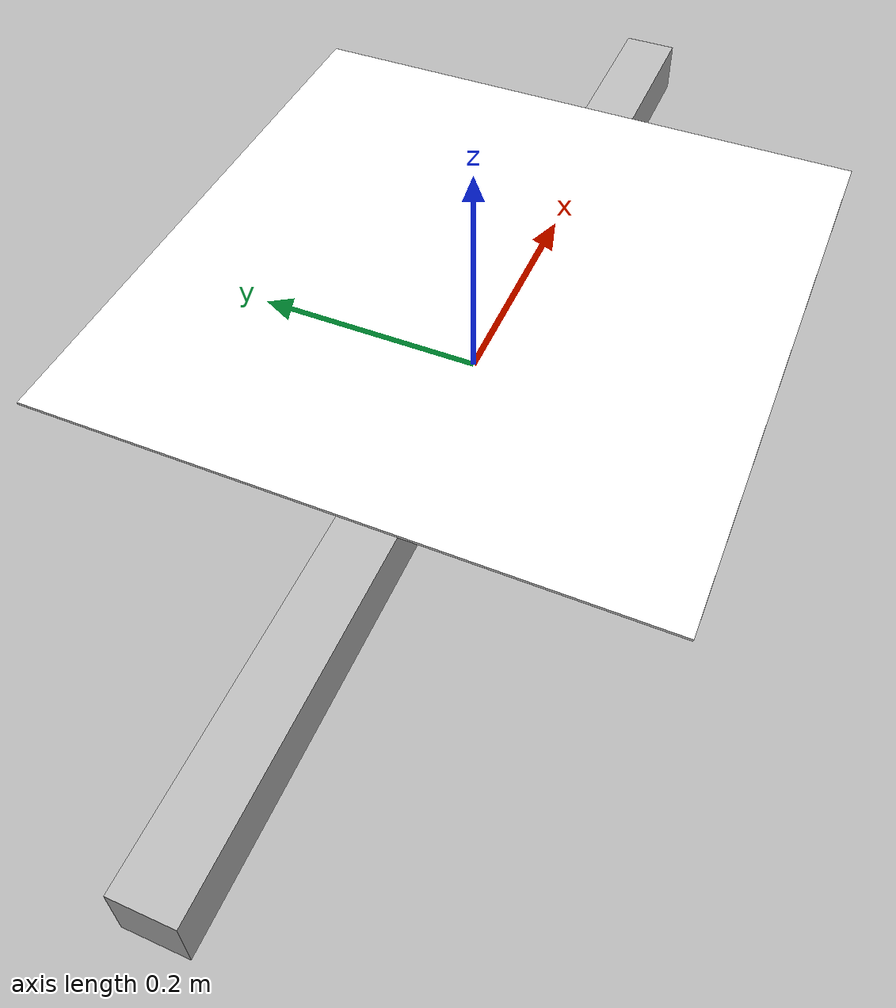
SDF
<?xml version="1.0" ?>
<sdf version="1.9">
<model name="landing_platform">

  <link name="base">
    <inertial>
      <mass>1.0</mass>
      <inertia><ixx>0.1</ixx><iyy>0.1</iyy><izz>0.1</izz></inertia>
    </inertial>
    <visual name="rail_visual">
      <geometry><box><size>1 0.05 0.05</size></box></geometry>
    </visual>
    <collision name="rail_collision">
      <geometry><box><size>1 0.05 0.05</size></box></geometry>
    </collision>
  </link>

  <joint name="world_fixed" type="fixed">
    <parent>world</parent>
    <child>base</child>
  </joint>

  <link name="slider">
    <pose>0 0 0.1 0 0 0</pose>
    <inertial>
      <mass>1.0</mass>
      <inertia><ixx>0.1</ixx><iyy>0.1</iyy><izz>0.1</izz></inertia>
    </inertial>
    <visual name="visual">
        <geometry>
          <mesh>
            <uri>model://landing_platform/meshes/aruco_plate.obj</uri>
            <scale>1 1 1</scale>
          </mesh>
        </geometry>
        <material>
          <diffuse>1 1 1 1</diffuse>
          <specular>0 0 0 1</specular>
          <pbr>
            <metal>
              <albedo_map>model://landing_platform/materials/textures/aruco_id1.png</albedo_map>
              <metalness>0.0</metalness>
              <roughness>0.9</roughness>
            </metal>
          </pbr>
        </material>
      </visual>

  <collision name="collision">
    <geometry>
      <box>
          <size>0.5 0.5 0.05</size>
      </box>
    </geometry>
  </collision>
  </link>

  <joint name="slider_joint" type="prismatic">
    <parent>base</parent>
    <child>slider</child>
    <axis>
      <xyz>1 0 0</xyz>
      <limit>
        <lower>-0.5</lower>
        <upper>0.5</upper>
        <velocity>0.1</velocity>
        <effort>100000</effort>
      </limit>
      <dynamics>
        <damping>0.5</damping>
      </dynamics>
    </axis>
  </joint>

  <plugin
    filename="gz-sim-joint-controller-system"
    name="gz::sim::systems::JointController">
    <joint_name>slider_joint</joint_name>
    <type>velocity</type>
    <topic>/slider/cmd_vel</topic>
    <use_force_commands>true</use_force_commands>
    <p_gain>200</p_gain>
    <i_gain>0.5</i_gain>
    <d_gain>20</d_gain>
  </plugin>

</model>
</sdf>
